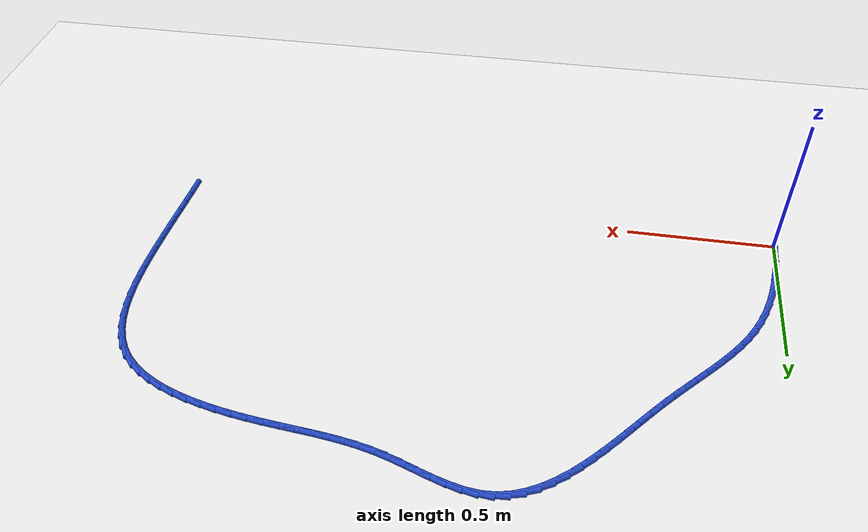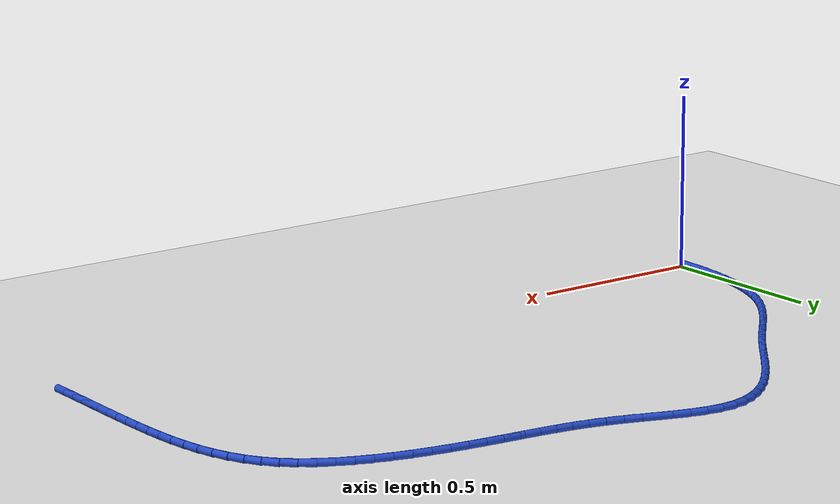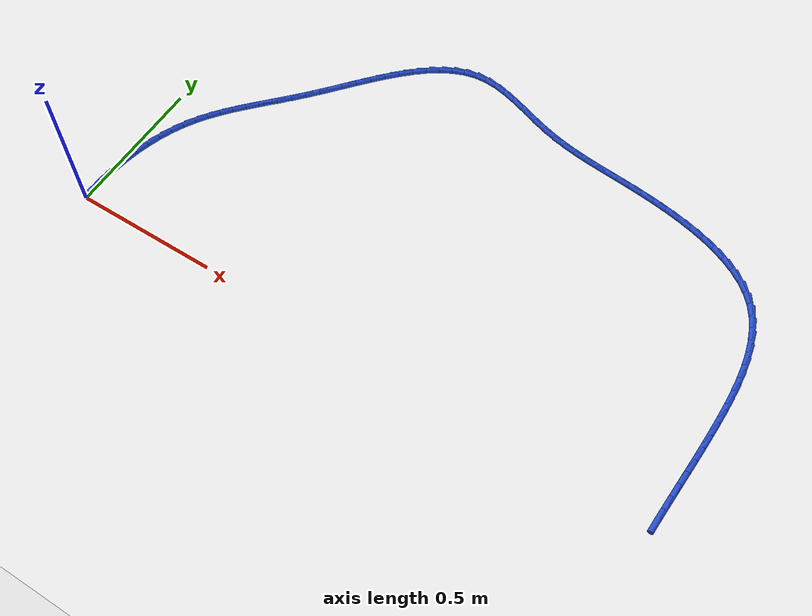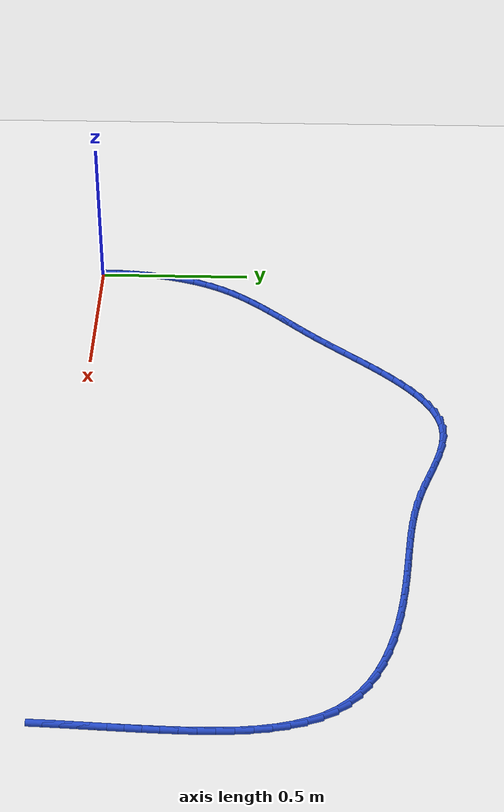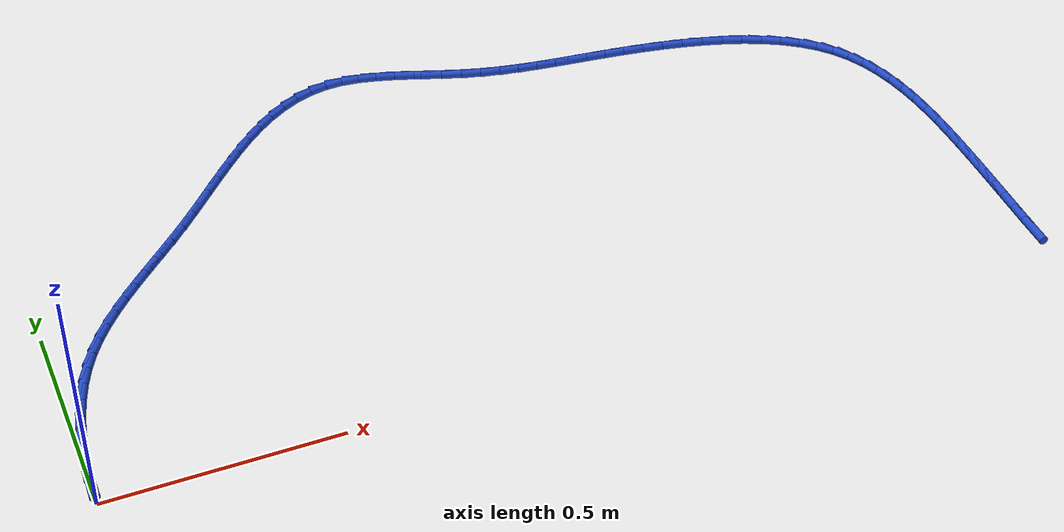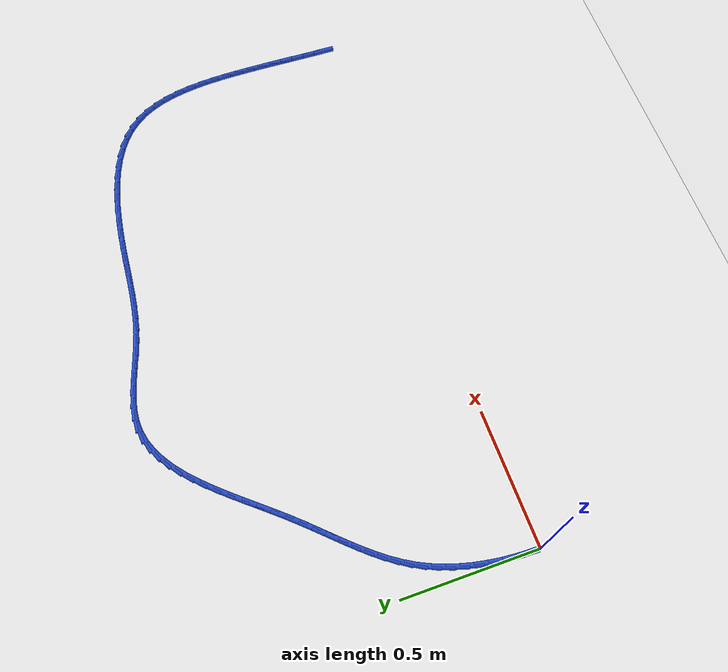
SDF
<sdf version="1.6">
 <world name="default">
  <model name="ground_plane">
   <static>1</static>
   <link name="link">
    <collision name="collision">
     <geometry><plane><normal>0 0 1</normal><size>100 100</size></plane></geometry>
     <surface><friction><ode><mu>100</mu><mu2>50</mu2></ode></friction></surface>
    </collision>
    <visual name="visual">
     <cast_shadows>0</cast_shadows>
     <geometry><plane><normal>0 0 1</normal><size>100 100</size></plane></geometry>
     <material>
      <script><uri>file://media/materials/scripts/gazebo.material</uri><name>Gazebo/WhiteGlow</name></script>
     </material>
    </visual>
   </link>
  </model>
  <model name="line">
   <link name="link_1">
    <pose>0.0006270178614802262 0.048048071941946394 0.01 0 1.57 1.5150571508433226</pose>
    <collision name="collision">
     <geometry><cylinder><radius>0.01</radius><length>0.08</length></cylinder></geometry>
    </collision>
    <visual name="visual">
     <material>
      <script><name>Gazebo/Blue</name><uri>file://media/materials/scripts/gazebo.material</uri></script>
     </material>
     <geometry><cylinder><radius>0.01</radius><length>0.08</length></cylinder></geometry>
    </visual>
   </link>
   <link name="link_2">
    <pose>0.003306523279857362 0.09607048799242425 0.01 0 1.57 1.4699026750207158</pose>
    <collision name="collision">
     <geometry><cylinder><radius>0.01</radius><length>0.08</length></cylinder></geometry>
    </collision>
    <visual name="visual">
     <material>
      <script><name>Gazebo/Blue</name><uri>file://media/materials/scripts/gazebo.material</uri></script>
     </material>
     <geometry><cylinder><radius>0.01</radius><length>0.08</length></cylinder></geometry>
    </visual>
   </link>
   <link name="link_3">
    <pose>0.008139195591979335 0.1438065246907644 0.01 0 1.57 1.4217368841431537</pose>
    <collision name="collision">
     <geometry><cylinder><radius>0.01</radius><length>0.08</length></cylinder></geometry>
    </collision>
    <visual name="visual">
     <material>
      <script><name>Gazebo/Blue</name><uri>file://media/materials/scripts/gazebo.material</uri></script>
     </material>
     <geometry><cylinder><radius>0.01</radius><length>0.08</length></cylinder></geometry>
    </visual>
   </link>
   <link name="link_4">
    <pose>0.015225714134694096 0.19099545857629785 0.01 0 1.57 1.369986135056164</pose>
    <collision name="collision">
     <geometry><cylinder><radius>0.01</radius><length>0.08</length></cylinder></geometry>
    </collision>
    <visual name="visual">
     <material>
      <script><name>Gazebo/Blue</name><uri>file://media/materials/scripts/gazebo.material</uri></script>
     </material>
     <geometry><cylinder><radius>0.01</radius><length>0.08</length></cylinder></geometry>
    </visual>
   </link>
   <link name="link_5">
    <pose>0.024666758244849603 0.2373765661883554 0.01 0 1.57 1.3140528449187738</pose>
    <collision name="collision">
     <geometry><cylinder><radius>0.01</radius><length>0.08</length></cylinder></geometry>
    </collision>
    <visual name="visual">
     <material>
      <script><name>Gazebo/Blue</name><uri>file://media/materials/scripts/gazebo.material</uri></script>
     </material>
     <geometry><cylinder><radius>0.01</radius><length>0.08</length></cylinder></geometry>
    </visual>
   </link>
   <link name="link_6">
    <pose>0.03656300725929379 0.28268912406626784 0.01 0 1.57 1.253327688898295</pose>
    <collision name="collision">
     <geometry><cylinder><radius>0.01</radius><length>0.08</length></cylinder></geometry>
    </collision>
    <visual name="visual">
     <material>
      <script><name>Gazebo/Blue</name><uri>file://media/materials/scripts/gazebo.material</uri></script>
     </material>
     <geometry><cylinder><radius>0.01</radius><length>0.08</length></cylinder></geometry>
    </visual>
   </link>
   <link name="link_7">
    <pose>0.05101514051487464 0.32667240874936626 0.01 0 1.57 1.1872153947212785</pose>
    <collision name="collision">
     <geometry><cylinder><radius>0.01</radius><length>0.08</length></cylinder></geometry>
    </collision>
    <visual name="visual">
     <material>
      <script><name>Gazebo/Blue</name><uri>file://media/materials/scripts/gazebo.material</uri></script>
     </material>
     <geometry><cylinder><radius>0.01</radius><length>0.08</length></cylinder></geometry>
    </visual>
   </link>
   <link name="link_8">
    <pose>0.06812383734844009 0.3690656967769814 0.01 0 1.57 1.1151799937240305</pose>
    <collision name="collision">
     <geometry><cylinder><radius>0.01</radius><length>0.08</length></cylinder></geometry>
    </collision>
    <visual name="visual">
     <material>
      <script><name>Gazebo/Blue</name><uri>file://media/materials/scripts/gazebo.material</uri></script>
     </material>
     <geometry><cylinder><radius>0.01</radius><length>0.08</length></cylinder></geometry>
    </visual>
   </link>
   <link name="link_9">
    <pose>0.08798975042032907 0.4096083067578972 0.01 0 1.57 1.0400181833528062</pose>
    <collision name="collision">
     <geometry><cylinder><radius>0.01</radius><length>0.08</length></cylinder></geometry>
    </collision>
    <visual name="visual">
     <material>
      <script><name>Gazebo/Blue</name><uri>file://media/materials/scripts/gazebo.material</uri></script>
     </material>
     <geometry><cylinder><radius>0.01</radius><length>0.08</length></cylinder></geometry>
    </visual>
   </link>
   <link name="link_10">
    <pose>0.11062729218662108 0.44817556003720427 0.01 0 1.57 0.9726922970216155</pose>
    <collision name="collision">
     <geometry><cylinder><radius>0.01</radius><length>0.08</length></cylinder></geometry>
    </collision>
    <visual name="visual">
     <material>
      <script><name>Gazebo/Blue</name><uri>file://media/materials/scripts/gazebo.material</uri></script>
     </material>
     <geometry><cylinder><radius>0.01</radius><length>0.08</length></cylinder></geometry>
    </visual>
   </link>
   <link name="link_11">
    <pose>0.13577303329604676 0.48508094072159963 0.01 0 1.57 0.9165937269103684</pose>
    <collision name="collision">
     <geometry><cylinder><radius>0.01</radius><length>0.08</length></cylinder></geometry>
    </collision>
    <visual name="visual">
     <material>
      <script><name>Gazebo/Blue</name><uri>file://media/materials/scripts/gazebo.material</uri></script>
     </material>
     <geometry><cylinder><radius>0.01</radius><length>0.08</length></cylinder></geometry>
    </visual>
   </link>
   <link name="link_12">
    <pose>0.16310769901584693 0.5207260023368868 0.01 0 1.57 0.8724091532777977</pose>
    <collision name="collision">
     <geometry><cylinder><radius>0.01</radius><length>0.08</length></cylinder></geometry>
    </collision>
    <visual name="visual">
     <material>
      <script><name>Gazebo/Blue</name><uri>file://media/materials/scripts/gazebo.material</uri></script>
     </material>
     <geometry><cylinder><radius>0.01</radius><length>0.08</length></cylinder></geometry>
    </visual>
   </link>
   <link name="link_13">
    <pose>0.19231201461326236 0.5555122984088685 0.01 0 1.57 0.8402629300087076</pose>
    <collision name="collision">
     <geometry><cylinder><radius>0.01</radius><length>0.08</length></cylinder></geometry>
    </collision>
    <visual name="visual">
     <material>
      <script><name>Gazebo/Blue</name><uri>file://media/materials/scripts/gazebo.material</uri></script>
     </material>
     <geometry><cylinder><radius>0.01</radius><length>0.08</length></cylinder></geometry>
    </visual>
   </link>
   <link name="link_14">
    <pose>0.2230667053555341 0.5898413824633485 0.01 0 1.57 0.8199099824116222</pose>
    <collision name="collision">
     <geometry><cylinder><radius>0.01</radius><length>0.08</length></cylinder></geometry>
    </collision>
    <visual name="visual">
     <material>
      <script><name>Gazebo/Blue</name><uri>file://media/materials/scripts/gazebo.material</uri></script>
     </material>
     <geometry><cylinder><radius>0.01</radius><length>0.08</length></cylinder></geometry>
    </visual>
   </link>
   <link name="link_15">
    <pose>0.25505249650990275 0.6241148080261293 0.01 0 1.57 0.8108929619688039</pose>
    <collision name="collision">
     <geometry><cylinder><radius>0.01</radius><length>0.08</length></cylinder></geometry>
    </collision>
    <visual name="visual">
     <material>
      <script><name>Gazebo/Blue</name><uri>file://media/materials/scripts/gazebo.material</uri></script>
     </material>
     <geometry><cylinder><radius>0.01</radius><length>0.08</length></cylinder></geometry>
    </visual>
   </link>
   <link name="link_16">
    <pose>0.2879501133436093 0.6587341286230145 0.01 0 1.57 0.8126450472303505</pose>
    <collision name="collision">
     <geometry><cylinder><radius>0.01</radius><length>0.08</length></cylinder></geometry>
    </collision>
    <visual name="visual">
     <material>
      <script><name>Gazebo/Blue</name><uri>file://media/materials/scripts/gazebo.material</uri></script>
     </material>
     <geometry><cylinder><radius>0.01</radius><length>0.08</length></cylinder></geometry>
    </visual>
   </link>
   <link name="link_17">
    <pose>0.32144028112389456 0.694100897779807 0.01 0 1.57 0.8245409089728115</pose>
    <collision name="collision">
     <geometry><cylinder><radius>0.01</radius><length>0.08</length></cylinder></geometry>
    </collision>
    <visual name="visual">
     <material>
      <script><name>Gazebo/Blue</name><uri>file://media/materials/scripts/gazebo.material</uri></script>
     </material>
     <geometry><cylinder><radius>0.01</radius><length>0.08</length></cylinder></geometry>
    </visual>
   </link>
   <link name="link_18">
    <pose>0.35520372511799936 0.73061666902231 0.01 0 1.57 0.8452997351876824</pose>
    <collision name="collision">
     <geometry><cylinder><radius>0.01</radius><length>0.08</length></cylinder></geometry>
    </collision>
    <visual name="visual">
     <material>
      <script><name>Gazebo/Blue</name><uri>file://media/materials/scripts/gazebo.material</uri></script>
     </material>
     <geometry><cylinder><radius>0.01</radius><length>0.08</length></cylinder></geometry>
    </visual>
   </link>
   <link name="link_19">
    <pose>0.38893419495520126 0.7686511194605623 0.01 0 1.57 0.863937119515582</pose>
    <collision name="collision">
     <geometry><cylinder><radius>0.01</radius><length>0.08</length></cylinder></geometry>
    </collision>
    <visual name="visual">
     <material>
      <script><name>Gazebo/Blue</name><uri>file://media/materials/scripts/gazebo.material</uri></script>
     </material>
     <geometry><cylinder><radius>0.01</radius><length>0.08</length></cylinder></geometry>
    </visual>
   </link>
   <link name="link_20">
    <pose>0.4225539319222955 0.808014705334264 0.01 0 1.57 0.872078140182129</pose>
    <collision name="collision">
     <geometry><cylinder><radius>0.01</radius><length>0.08</length></cylinder></geometry>
    </collision>
    <visual name="visual">
     <material>
      <script><name>Gazebo/Blue</name><uri>file://media/materials/scripts/gazebo.material</uri></script>
     </material>
     <geometry><cylinder><radius>0.01</radius><length>0.08</length></cylinder></geometry>
    </visual>
   </link>
   <link name="link_21">
    <pose>0.4561800191463018 0.8480410181054147 0.01 0 1.57 0.869948432808069</pose>
    <collision name="collision">
     <geometry><cylinder><radius>0.01</radius><length>0.08</length></cylinder></geometry>
    </collision>
    <visual name="visual">
     <material>
      <script><name>Gazebo/Blue</name><uri>file://media/materials/scripts/gazebo.material</uri></script>
     </material>
     <geometry><cylinder><radius>0.01</radius><length>0.08</length></cylinder></geometry>
    </visual>
   </link>
   <link name="link_22">
    <pose>0.48993578056311893 0.8880483751966425 0.01 0 1.57 0.8575352679056768</pose>
    <collision name="collision">
     <geometry><cylinder><radius>0.01</radius><length>0.08</length></cylinder></geometry>
    </collision>
    <visual name="visual">
     <material>
      <script><name>Gazebo/Blue</name><uri>file://media/materials/scripts/gazebo.material</uri></script>
     </material>
     <geometry><cylinder><radius>0.01</radius><length>0.08</length></cylinder></geometry>
    </visual>
   </link>
   <link name="link_23">
    <pose>0.5239445401086457 0.9273550940305763 0.01 0 1.57 0.8343059135419395</pose>
    <collision name="collision">
     <geometry><cylinder><radius>0.01</radius><length>0.08</length></cylinder></geometry>
    </collision>
    <visual name="visual">
     <material>
      <script><name>Gazebo/Blue</name><uri>file://media/materials/scripts/gazebo.material</uri></script>
     </material>
     <geometry><cylinder><radius>0.01</radius><length>0.08</length></cylinder></geometry>
    </visual>
   </link>
   <link name="link_24">
    <pose>0.5583296217187803 0.9652794920298436 0.01 0 1.57 0.799188585918373</pose>
    <collision name="collision">
     <geometry><cylinder><radius>0.01</radius><length>0.08</length></cylinder></geometry>
    </collision>
    <visual name="visual">
     <material>
      <script><name>Gazebo/Blue</name><uri>file://media/materials/scripts/gazebo.material</uri></script>
     </material>
     <geometry><cylinder><radius>0.01</radius><length>0.08</length></cylinder></geometry>
    </visual>
   </link>
   <link name="link_25">
    <pose>0.5932143493294222 1.0011398866170735 0.01 0 1.57 0.7505404573366011</pose>
    <collision name="collision">
     <geometry><cylinder><radius>0.01</radius><length>0.08</length></cylinder></geometry>
    </collision>
    <visual name="visual">
     <material>
      <script><name>Gazebo/Blue</name><uri>file://media/materials/scripts/gazebo.material</uri></script>
     </material>
     <geometry><cylinder><radius>0.01</radius><length>0.08</length></cylinder></geometry>
    </visual>
   </link>
   <link name="link_26">
    <pose>0.6287220468764698 1.034254595214894 0.01 0 1.57 0.6861421622858155</pose>
    <collision name="collision">
     <geometry><cylinder><radius>0.01</radius><length>0.08</length></cylinder></geometry>
    </collision>
    <visual name="visual">
     <material>
      <script><name>Gazebo/Blue</name><uri>file://media/materials/scripts/gazebo.material</uri></script>
     </material>
     <geometry><cylinder><radius>0.01</radius><length>0.08</length></cylinder></geometry>
    </visual>
   </link>
   <link name="link_27">
    <pose>0.6649760382958217 1.0639419352459332 0.01 0 1.57 0.6033074314430158</pose>
    <collision name="collision">
     <geometry><cylinder><radius>0.01</radius><length>0.08</length></cylinder></geometry>
    </collision>
    <visual name="visual">
     <material>
      <script><name>Gazebo/Blue</name><uri>file://media/materials/scripts/gazebo.material</uri></script>
     </material>
     <geometry><cylinder><radius>0.01</radius><length>0.08</length></cylinder></geometry>
    </visual>
   </link>
   <link name="link_28">
    <pose>0.7020996475233767 1.0895202241328197 0.01 0 1.57 0.4992801802848108</pose>
    <collision name="collision">
     <geometry><cylinder><radius>0.01</radius><length>0.08</length></cylinder></geometry>
    </collision>
    <visual name="visual">
     <material>
      <script><name>Gazebo/Blue</name><uri>file://media/materials/scripts/gazebo.material</uri></script>
     </material>
     <geometry><cylinder><radius>0.01</radius><length>0.08</length></cylinder></geometry>
    </visual>
   </link>
   <link name="link_29">
    <pose>0.7402161984950337 1.1103077792981817 0.01 0 1.57 0.37217329856221465</pose>
    <collision name="collision">
     <geometry><cylinder><radius>0.01</radius><length>0.08</length></cylinder></geometry>
    </collision>
    <visual name="visual">
     <material>
      <script><name>Gazebo/Blue</name><uri>file://media/materials/scripts/gazebo.material</uri></script>
     </material>
     <geometry><cylinder><radius>0.01</radius><length>0.08</length></cylinder></geometry>
    </visual>
   </link>
   <link name="link_30">
    <pose>0.7794490151466912 1.1256229181646475 0.01 0 1.57 0.22260162466793534</pose>
    <collision name="collision">
     <geometry><cylinder><radius>0.01</radius><length>0.08</length></cylinder></geometry>
    </collision>
    <visual name="visual">
     <material>
      <script><name>Gazebo/Blue</name><uri>file://media/materials/scripts/gazebo.material</uri></script>
     </material>
     <geometry><cylinder><radius>0.01</radius><length>0.08</length></cylinder></geometry>
    </visual>
   </link>
   <link name="link_31">
    <pose>0.8199214214142483 1.1347839581548453 0.01 0 1.57 0.05574962236098516</pose>
    <collision name="collision">
     <geometry><cylinder><radius>0.01</radius><length>0.08</length></cylinder></geometry>
    </collision>
    <visual name="visual">
     <material>
      <script><name>Gazebo/Blue</name><uri>file://media/materials/scripts/gazebo.material</uri></script>
     </material>
     <geometry><cylinder><radius>0.01</radius><length>0.08</length></cylinder></geometry>
    </visual>
   </link>
   <link name="link_32">
    <pose>0.8617550495700701 1.1371185863184745 0.01 0 1.57 -0.1016440189844402</pose>
    <collision name="collision">
     <geometry><cylinder><radius>0.01</radius><length>0.08</length></cylinder></geometry>
    </collision>
    <visual name="visual">
     <material>
      <script><name>Gazebo/Blue</name><uri>file://media/materials/scripts/gazebo.material</uri></script>
     </material>
     <geometry><cylinder><radius>0.01</radius><length>0.08</length></cylinder></geometry>
    </visual>
   </link>
   <link name="link_33">
    <pose>0.904934314795307 1.1327144948406727 0.01 0 1.57 -0.21669088361511035</pose>
    <collision name="collision">
     <geometry><cylinder><radius>0.01</radius><length>0.08</length></cylinder></geometry>
    </collision>
    <visual name="visual">
     <material>
      <script><name>Gazebo/Blue</name><uri>file://media/materials/scripts/gazebo.material</uri></script>
     </material>
     <geometry><cylinder><radius>0.01</radius><length>0.08</length></cylinder></geometry>
    </visual>
   </link>
   <link name="link_34">
    <pose>0.9492073823655433 1.1229678946915609 0.01 0 1.57 -0.29219035805426574</pose>
    <collision name="collision">
     <geometry><cylinder><radius>0.01</radius><length>0.08</length></cylinder></geometry>
    </collision>
    <visual name="visual">
     <material>
      <script><name>Gazebo/Blue</name><uri>file://media/materials/scripts/gazebo.material</uri></script>
     </material>
     <geometry><cylinder><radius>0.01</radius><length>0.08</length></cylinder></geometry>
    </visual>
   </link>
   <link name="link_35">
    <pose>0.9942990673730373 1.1094043266432783 0.01 0 1.57 -0.33438318686641527</pose>
    <collision name="collision">
     <geometry><cylinder><radius>0.01</radius><length>0.08</length></cylinder></geometry>
    </collision>
    <visual name="visual">
     <material>
      <script><name>Gazebo/Blue</name><uri>file://media/materials/scripts/gazebo.material</uri></script>
     </material>
     <geometry><cylinder><radius>0.01</radius><length>0.08</length></cylinder></geometry>
    </visual>
   </link>
   <link name="link_36">
    <pose>1.0399341849100483 1.0935493314679638 0.01 0 1.57 -0.34739939851795587</pose>
    <collision name="collision">
     <geometry><cylinder><radius>0.01</radius><length>0.08</length></cylinder></geometry>
    </collision>
    <visual name="visual">
     <material>
      <script><name>Gazebo/Blue</name><uri>file://media/materials/scripts/gazebo.material</uri></script>
     </material>
     <geometry><cylinder><radius>0.01</radius><length>0.08</length></cylinder></geometry>
    </visual>
   </link>
   <link name="link_37">
    <pose>1.0858375500688346 1.0769284499377583 0.01 0 1.57 -0.3327383756387815</pose>
    <collision name="collision">
     <geometry><cylinder><radius>0.01</radius><length>0.08</length></cylinder></geometry>
    </collision>
    <visual name="visual">
     <material>
      <script><name>Gazebo/Blue</name><uri>file://media/materials/scripts/gazebo.material</uri></script>
     </material>
     <geometry><cylinder><radius>0.01</radius><length>0.08</length></cylinder></geometry>
    </visual>
   </link>
   <link name="link_38">
    <pose>1.131733977941656 1.0610672228248004 0.01 0 1.57 -0.29002515084186375</pose>
    <collision name="collision">
     <geometry><cylinder><radius>0.01</radius><length>0.08</length></cylinder></geometry>
    </collision>
    <visual name="visual">
     <material>
      <script><name>Gazebo/Blue</name><uri>file://media/materials/scripts/gazebo.material</uri></script>
     </material>
     <geometry><cylinder><radius>0.01</radius><length>0.08</length></cylinder></geometry>
    </visual>
   </link>
   <link name="link_39">
    <pose>1.1773576845385618 1.047451275738747 0.01 0 1.57 -0.23508317169298842</pose>
    <collision name="collision">
     <geometry><cylinder><radius>0.01</radius><length>0.08</length></cylinder></geometry>
    </collision>
    <visual name="visual">
     <material>
      <script><name>Gazebo/Blue</name><uri>file://media/materials/scripts/gazebo.material</uri></script>
     </material>
     <geometry><cylinder><radius>0.01</radius><length>0.08</length></cylinder></geometry>
    </visual>
   </link>
   <link name="link_40">
    <pose>1.2226708702567777 1.0365982400933567 0.01 0 1.57 -0.18735950661556267</pose>
    <collision name="collision">
     <geometry><cylinder><radius>0.01</radius><length>0.08</length></cylinder></geometry>
    </collision>
    <visual name="visual">
     <material>
      <script><name>Gazebo/Blue</name><uri>file://media/materials/scripts/gazebo.material</uri></script>
     </material>
     <geometry><cylinder><radius>0.01</radius><length>0.08</length></cylinder></geometry>
    </visual>
   </link>
   <link name="link_41">
    <pose>1.2678704530945848 1.0280291646928867 0.01 0 1.57 -0.14922793312525176</pose>
    <collision name="collision">
     <geometry><cylinder><radius>0.01</radius><length>0.08</length></cylinder></geometry>
    </collision>
    <visual name="visual">
     <material>
      <script><name>Gazebo/Blue</name><uri>file://media/materials/scripts/gazebo.material</uri></script>
     </material>
     <geometry><cylinder><radius>0.01</radius><length>0.08</length></cylinder></geometry>
    </visual>
   </link>
   <link name="link_42">
    <pose>1.3131640989684659 1.0212194639779162 0.01 0 1.57 -0.12166534359309315</pose>
    <collision name="collision">
     <geometry><cylinder><radius>0.01</radius><length>0.08</length></cylinder></geometry>
    </collision>
    <visual name="visual">
     <material>
      <script><name>Gazebo/Blue</name><uri>file://media/materials/scripts/gazebo.material</uri></script>
     </material>
     <geometry><cylinder><radius>0.01</radius><length>0.08</length></cylinder></geometry>
    </visual>
   </link>
   <link name="link_43">
    <pose>1.358759473794905 1.0156445523890252 0.01 0 1.57 -0.1051252260184742</pose>
    <collision name="collision">
     <geometry><cylinder><radius>0.01</radius><length>0.08</length></cylinder></geometry>
    </collision>
    <visual name="visual">
     <material>
      <script><name>Gazebo/Blue</name><uri>file://media/materials/scripts/gazebo.material</uri></script>
     </material>
     <geometry><cylinder><radius>0.01</radius><length>0.08</length></cylinder></geometry>
    </visual>
   </link>
   <link name="link_44">
    <pose>1.404864243490385 1.0107798443667928 0.01 0 1.57 -0.09960324648268445</pose>
    <collision name="collision">
     <geometry><cylinder><radius>0.01</radius><length>0.08</length></cylinder></geometry>
    </collision>
    <visual name="visual">
     <material>
      <script><name>Gazebo/Blue</name><uri>file://media/materials/scripts/gazebo.material</uri></script>
     </material>
     <geometry><cylinder><radius>0.01</radius><length>0.08</length></cylinder></geometry>
    </visual>
   </link>
   <link name="link_45">
    <pose>1.4516860739713886 1.0061007543517984 0.01 0 1.57 -0.10471337876252852</pose>
    <collision name="collision">
     <geometry><cylinder><radius>0.01</radius><length>0.08</length></cylinder></geometry>
    </collision>
    <visual name="visual">
     <material>
      <script><name>Gazebo/Blue</name><uri>file://media/materials/scripts/gazebo.material</uri></script>
     </material>
     <geometry><cylinder><radius>0.01</radius><length>0.08</length></cylinder></geometry>
    </visual>
   </link>
   <link name="link_46">
    <pose>1.4994326311543997 1.001082696784622 0.01 0 1.57 -0.11947354042110299</pose>
    <collision name="collision">
     <geometry><cylinder><radius>0.01</radius><length>0.08</length></cylinder></geometry>
    </collision>
    <visual name="visual">
     <material>
      <script><name>Gazebo/Blue</name><uri>file://media/materials/scripts/gazebo.material</uri></script>
     </material>
     <geometry><cylinder><radius>0.01</radius><length>0.08</length></cylinder></geometry>
    </visual>
   </link>
   <link name="link_47">
    <pose>1.5482549897434164 0.9952218041959419 0.01 0 1.57 -0.14101472048046151</pose>
    <collision name="collision">
     <geometry><cylinder><radius>0.01</radius><length>0.08</length></cylinder></geometry>
    </collision>
    <visual name="visual">
     <material>
      <script><name>Gazebo/Blue</name><uri>file://media/materials/scripts/gazebo.material</uri></script>
     </material>
     <geometry><cylinder><radius>0.01</radius><length>0.08</length></cylinder></geometry>
    </visual>
   </link>
   <link name="link_48">
    <pose>1.5978457684811063 0.9881820502263224 0.01 0 1.57 -0.16843367093007244</pose>
    <collision name="collision">
     <geometry><cylinder><radius>0.01</radius><length>0.08</length></cylinder></geometry>
    </collision>
    <visual name="visual">
     <material>
      <script><name>Gazebo/Blue</name><uri>file://media/materials/scripts/gazebo.material</uri></script>
     </material>
     <geometry><cylinder><radius>0.01</radius><length>0.08</length></cylinder></geometry>
    </visual>
   </link>
   <link name="link_49">
    <pose>1.6476752425139827 0.9797088086923605 0.01 0 1.57 -0.20230975728410908</pose>
    <collision name="collision">
     <geometry><cylinder><radius>0.01</radius><length>0.08</length></cylinder></geometry>
    </collision>
    <visual name="visual">
     <material>
      <script><name>Gazebo/Blue</name><uri>file://media/materials/scripts/gazebo.material</uri></script>
     </material>
     <geometry><cylinder><radius>0.01</radius><length>0.08</length></cylinder></geometry>
    </visual>
   </link>
   <link name="link_50">
    <pose>1.6972122216306658 0.9695479898793989 0.01 0 1.57 -0.24351288759406114</pose>
    <collision name="collision">
     <geometry><cylinder><radius>0.01</radius><length>0.08</length></cylinder></geometry>
    </collision>
    <visual name="visual">
     <material>
      <script><name>Gazebo/Blue</name><uri>file://media/materials/scripts/gazebo.material</uri></script>
     </material>
     <geometry><cylinder><radius>0.01</radius><length>0.08</length></cylinder></geometry>
    </visual>
   </link>
   <link name="link_51">
    <pose>1.7459255156197768 0.9574455040727804 0.01 0 1.57 -0.29321324230423373</pose>
    <collision name="collision">
     <geometry><cylinder><radius>0.01</radius><length>0.08</length></cylinder></geometry>
    </collision>
    <visual name="visual">
     <material>
      <script><name>Gazebo/Blue</name><uri>file://media/materials/scripts/gazebo.material</uri></script>
     </material>
     <geometry><cylinder><radius>0.01</radius><length>0.08</length></cylinder></geometry>
    </visual>
   </link>
   <link name="link_52">
    <pose>1.7932839342699367 0.9431472615578478 0.01 0 1.57 -0.35289582932010755</pose>
    <collision name="collision">
     <geometry><cylinder><radius>0.01</radius><length>0.08</length></cylinder></geometry>
    </collision>
    <visual name="visual">
     <material>
      <script><name>Gazebo/Blue</name><uri>file://media/materials/scripts/gazebo.material</uri></script>
     </material>
     <geometry><cylinder><radius>0.01</radius><length>0.08</length></cylinder></geometry>
    </visual>
   </link>
   <link name="link_53">
    <pose>1.8387562873697667 0.926399172619944 0.01 0 1.57 -0.42434463139012923</pose>
    <collision name="collision">
     <geometry><cylinder><radius>0.01</radius><length>0.08</length></cylinder></geometry>
    </collision>
    <visual name="visual">
     <material>
      <script><name>Gazebo/Blue</name><uri>file://media/materials/scripts/gazebo.material</uri></script>
     </material>
     <geometry><cylinder><radius>0.01</radius><length>0.08</length></cylinder></geometry>
    </visual>
   </link>
   <link name="link_54">
    <pose>1.881811384707888 0.9069471475444115 0.01 0 1.57 -0.50954496203695</pose>
    <collision name="collision">
     <geometry><cylinder><radius>0.01</radius><length>0.08</length></cylinder></geometry>
    </collision>
    <visual name="visual">
     <material>
      <script><name>Gazebo/Blue</name><uri>file://media/materials/scripts/gazebo.material</uri></script>
     </material>
     <geometry><cylinder><radius>0.01</radius><length>0.08</length></cylinder></geometry>
    </visual>
   </link>
   <link name="link_55">
    <pose>1.9219180360729196 0.8845370966165932 0.01 0 1.57 -0.6104190847306017</pose>
    <collision name="collision">
     <geometry><cylinder><radius>0.01</radius><length>0.08</length></cylinder></geometry>
    </collision>
    <visual name="visual">
     <material>
      <script><name>Gazebo/Blue</name><uri>file://media/materials/scripts/gazebo.material</uri></script>
     </material>
     <geometry><cylinder><radius>0.01</radius><length>0.08</length></cylinder></geometry>
    </visual>
   </link>
   <link name="link_56">
    <pose>1.9585450512534845 0.8589149301218324 0.01 0 1.57 -0.7282876243490881</pose>
    <collision name="collision">
     <geometry><cylinder><radius>0.01</radius><length>0.08</length></cylinder></geometry>
    </collision>
    <visual name="visual">
     <material>
      <script><name>Gazebo/Blue</name><uri>file://media/materials/scripts/gazebo.material</uri></script>
     </material>
     <geometry><cylinder><radius>0.01</radius><length>0.08</length></cylinder></geometry>
    </visual>
   </link>
   <link name="link_57">
    <pose>1.9911612400382028 0.8298265583454714 0.01 0 1.57 -0.8630048379674841</pose>
    <collision name="collision">
     <geometry><cylinder><radius>0.01</radius><length>0.08</length></cylinder></geometry>
    </collision>
    <visual name="visual">
     <material>
      <script><name>Gazebo/Blue</name><uri>file://media/materials/scripts/gazebo.material</uri></script>
     </material>
     <geometry><cylinder><radius>0.01</radius><length>0.08</length></cylinder></geometry>
    </visual>
   </link>
   <link name="link_58">
    <pose>2.0192354521282048 0.7970179222257225 0.01 0 1.57 -1.0062319117616587</pose>
    <collision name="collision">
     <geometry><cylinder><radius>0.01</radius><length>0.08</length></cylinder></geometry>
    </collision>
    <visual name="visual">
     <material>
      <script><name>Gazebo/Blue</name><uri>file://media/materials/scripts/gazebo.material</uri></script>
     </material>
     <geometry><cylinder><radius>0.01</radius><length>0.08</length></cylinder></geometry>
    </visual>
   </link>
   <link name="link_59">
    <pose>2.0424346895046384 0.7603871439656591 0.01 0 1.57 -1.1349974393412567</pose>
    <collision name="collision">
     <geometry><cylinder><radius>0.01</radius><length>0.08</length></cylinder></geometry>
    </collision>
    <visual name="visual">
     <material>
      <script><name>Gazebo/Blue</name><uri>file://media/materials/scripts/gazebo.material</uri></script>
     </material>
     <geometry><cylinder><radius>0.01</radius><length>0.08</length></cylinder></geometry>
    </visual>
   </link>
   <link name="link_60">
    <pose>2.0610840276686417 0.7203377472738673 0.01 0 1.57 -1.2440044031408821</pose>
    <collision name="collision">
     <geometry><cylinder><radius>0.01</radius><length>0.08</length></cylinder></geometry>
    </collision>
    <visual name="visual">
     <material>
      <script><name>Gazebo/Blue</name><uri>file://media/materials/scripts/gazebo.material</uri></script>
     </material>
     <geometry><cylinder><radius>0.01</radius><length>0.08</length></cylinder></geometry>
    </visual>
   </link>
   <link name="link_61">
    <pose>2.075644977460609 0.6773780384155502 0.01 0 1.57 -1.3342664586276411</pose>
    <collision name="collision">
     <geometry><cylinder><radius>0.01</radius><length>0.08</length></cylinder></geometry>
    </collision>
    <visual name="visual">
     <material>
      <script><name>Gazebo/Blue</name><uri>file://media/materials/scripts/gazebo.material</uri></script>
     </material>
     <geometry><cylinder><radius>0.01</radius><length>0.08</length></cylinder></geometry>
    </visual>
   </link>
   <link name="link_62">
    <pose>2.0865790497209384 0.632016323655912 0.01 0 1.57 -1.407855604424198</pose>
    <collision name="collision">
     <geometry><cylinder><radius>0.01</radius><length>0.08</length></cylinder></geometry>
    </collision>
    <visual name="visual">
     <material>
      <script><name>Gazebo/Blue</name><uri>file://media/materials/scripts/gazebo.material</uri></script>
     </material>
     <geometry><cylinder><radius>0.01</radius><length>0.08</length></cylinder></geometry>
    </visual>
   </link>
   <link name="link_63">
    <pose>2.0943477552900247 0.5847609092601567 0.01 0 1.57 -1.4670426512309898</pose>
    <collision name="collision">
     <geometry><cylinder><radius>0.01</radius><length>0.08</length></cylinder></geometry>
    </collision>
    <visual name="visual">
     <material>
      <script><name>Gazebo/Blue</name><uri>file://media/materials/scripts/gazebo.material</uri></script>
     </material>
     <geometry><cylinder><radius>0.01</radius><length>0.08</length></cylinder></geometry>
    </visual>
   </link>
   <link name="link_64">
    <pose>2.099412605008264 0.5361201014934877 0.01 0 1.57 -1.5138582457123684</pose>
    <collision name="collision">
     <geometry><cylinder><radius>0.01</radius><length>0.08</length></cylinder></geometry>
    </collision>
    <visual name="visual">
     <material>
      <script><name>Gazebo/Blue</name><uri>file://media/materials/scripts/gazebo.material</uri></script>
     </material>
     <geometry><cylinder><radius>0.01</radius><length>0.08</length></cylinder></geometry>
    </visual>
   </link>
   <link name="link_65">
    <pose>2.102235109716053 0.48660220662110876 0.01 0 1.57 -1.5499186240576708</pose>
    <collision name="collision">
     <geometry><cylinder><radius>0.01</radius><length>0.08</length></cylinder></geometry>
    </collision>
    <visual name="visual">
     <material>
      <script><name>Gazebo/Blue</name><uri>file://media/materials/scripts/gazebo.material</uri></script>
     </material>
     <geometry><cylinder><radius>0.01</radius><length>0.08</length></cylinder></geometry>
    </visual>
   </link>
   <link name="link_66">
    <pose>2.103276780253787 0.4367155309082238 0.01 0 1.57 1.5652151044063933</pose>
    <collision name="collision">
     <geometry><cylinder><radius>0.01</radius><length>0.08</length></cylinder></geometry>
    </collision>
    <visual name="visual">
     <material>
      <script><name>Gazebo/Blue</name><uri>file://media/materials/scripts/gazebo.material</uri></script>
     </material>
     <geometry><cylinder><radius>0.01</radius><length>0.08</length></cylinder></geometry>
    </visual>
   </link>
   <link name="link_67">
    <pose>2.102999127461863 0.38696838062003613 0.01 0 1.57 1.5476605720555994</pose>
    <collision name="collision">
     <geometry><cylinder><radius>0.01</radius><length>0.08</length></cylinder></geometry>
    </collision>
    <visual name="visual">
     <material>
      <script><name>Gazebo/Blue</name><uri>file://media/materials/scripts/gazebo.material</uri></script>
     </material>
     <geometry><cylinder><radius>0.01</radius><length>0.08</length></cylinder></geometry>
    </visual>
   </link>
   <link name="link_68">
    <pose>2.101862942859436 0.3378676752942488 0.01 0 1.57 1.536777372102222</pose>
    <collision name="collision">
     <geometry><cylinder><radius>0.01</radius><length>0.08</length></cylinder></geometry>
    </collision>
    <visual name="visual">
     <material>
      <script><name>Gazebo/Blue</name><uri>file://media/materials/scripts/gazebo.material</uri></script>
     </material>
     <geometry><cylinder><radius>0.01</radius><length>0.08</length></cylinder></geometry>
    </visual>
   </link>
   <link name="link_69">
    <pose>2.10022432631809 0.28971850699723806 0.01 0 1.57 1.528572875986556</pose>
    <collision name="collision">
     <geometry><cylinder><radius>0.01</radius><length>0.08</length></cylinder></geometry>
    </collision>
    <visual name="visual">
     <material>
      <script><name>Gazebo/Blue</name><uri>file://media/materials/scripts/gazebo.material</uri></script>
     </material>
     <geometry><cylinder><radius>0.01</radius><length>0.08</length></cylinder></geometry>
    </visual>
   </link>
   <link name="link_70">
    <pose>2.098225787533695 0.24241420271131434 0.01 0 1.57 1.522738871788107</pose>
    <collision name="collision">
     <geometry><cylinder><radius>0.01</radius><length>0.08</length></cylinder></geometry>
    </collision>
    <visual name="visual">
     <material>
      <script><name>Gazebo/Blue</name><uri>file://media/materials/scripts/gazebo.material</uri></script>
     </material>
     <geometry><cylinder><radius>0.01</radius><length>0.08</length></cylinder></geometry>
    </visual>
   </link>
   <link name="link_71">
    <pose>2.095983800264289 0.19579789661336694 0.01 0 1.57 1.519437537232453</pose>
    <collision name="collision">
     <geometry><cylinder><radius>0.01</radius><length>0.08</length></cylinder></geometry>
    </collision>
    <visual name="visual">
     <material>
      <script><name>Gazebo/Blue</name><uri>file://media/materials/scripts/gazebo.material</uri></script>
     </material>
     <geometry><cylinder><radius>0.01</radius><length>0.08</length></cylinder></geometry>
    </visual>
   </link>
   <link name="link_72">
    <pose>2.0936148382679147 0.14971272288028667 0.01 0 1.57 1.518788668155942</pose>
    <collision name="collision">
     <geometry><cylinder><radius>0.01</radius><length>0.08</length></cylinder></geometry>
    </collision>
    <visual name="visual">
     <material>
      <script><name>Gazebo/Blue</name><uri>file://media/materials/scripts/gazebo.material</uri></script>
     </material>
     <geometry><cylinder><radius>0.01</radius><length>0.08</length></cylinder></geometry>
    </visual>
   </link>
   <link name="link_73">
    <pose>2.091235375302609 0.10400181568896301 0.01 0 1.57 1.5208639170561606</pose>
    <collision name="collision">
     <geometry><cylinder><radius>0.01</radius><length>0.08</length></cylinder></geometry>
    </collision>
    <visual name="visual">
     <material>
      <script><name>Gazebo/Blue</name><uri>file://media/materials/scripts/gazebo.material</uri></script>
     </material>
     <geometry><cylinder><radius>0.01</radius><length>0.08</length></cylinder></geometry>
    </visual>
   </link>
   <link name="link_74">
    <pose>2.0889618851264147 0.058508309216285956 0.01 0 1.57 1.525682571162585</pose>
    <collision name="collision">
     <geometry><cylinder><radius>0.01</radius><length>0.08</length></cylinder></geometry>
    </collision>
    <visual name="visual">
     <material>
      <script><name>Gazebo/Blue</name><uri>file://media/materials/scripts/gazebo.material</uri></script>
     </material>
     <geometry><cylinder><radius>0.01</radius><length>0.08</length></cylinder></geometry>
    </visual>
   </link>
   <link name="link_75">
    <pose>2.086910841497369 0.013075337639145257 0.01 0 1.57 1.5332091716858143</pose>
    <collision name="collision">
     <geometry><cylinder><radius>0.01</radius><length>0.08</length></cylinder></geometry>
    </collision>
    <visual name="visual">
     <material>
      <script><name>Gazebo/Blue</name><uri>file://media/materials/scripts/gazebo.material</uri></script>
     </material>
     <geometry><cylinder><radius>0.01</radius><length>0.08</length></cylinder></geometry>
    </visual>
   </link>
   <link name="link_151">
    <pose>0.0006026341240882357 0.04807440267996046 0.01 0 1.57 1.5582615363864447</pose>
    <collision name="collision">
     <geometry><cylinder><radius>0.01</radius><length>0.08</length></cylinder></geometry>
    </collision>
    <visual name="visual">
     <material>
      <script><name>Gazebo/Blue</name><uri>file://media/materials/scripts/gazebo.material</uri></script>
     </material>
     <geometry><cylinder><radius>0.01</radius><length>0.08</length></cylinder></geometry>
    </visual>
   </link>
  </model>
 </world>
</sdf>
